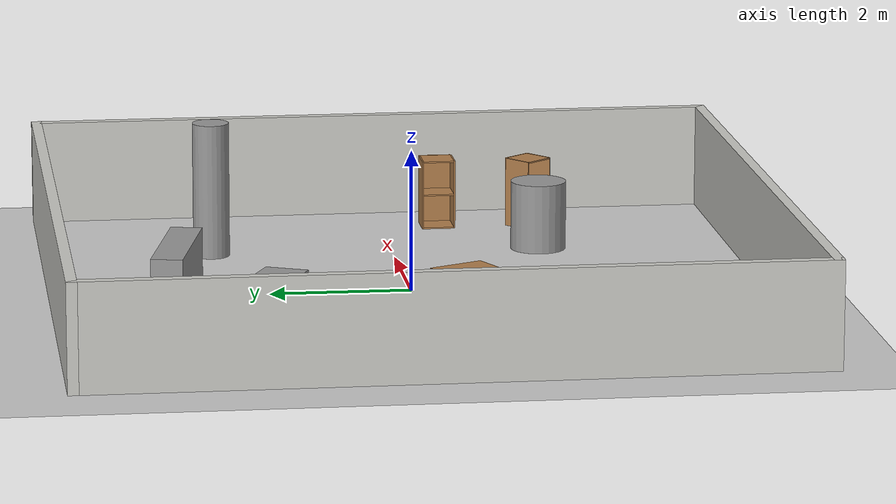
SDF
<sdf version="1.7">
 <world name="default">
  <model name="ground_plane">
   <static>1</static>
   <link name="link">
    <collision name="collision">
     <geometry><plane><normal>0 0 1</normal><size>100 100</size></plane></geometry>
     <surface><friction><ode><mu>100</mu><mu2>50</mu2></ode></friction></surface>
    </collision>
    <visual name="visual">
     <cast_shadows>0</cast_shadows>
     <geometry><plane><normal>0 0 1</normal><size>100 100</size></plane></geometry>
     <material>
      <script><uri>file://media/materials/scripts/gazebo.material</uri><name>Gazebo/Grey</name></script>
     </material>
    </visual>
   </link>
  </model>
  <gravity>0 0 -9.8</gravity>
  <magnetic_field>6e-06 2.3e-05 -4.2e-05</magnetic_field>
  <atmosphere type="adiabatic"/>
  <physics type="ode">
   <max_step_size>0.001</max_step_size>
   <real_time_factor>1</real_time_factor>
   <real_time_update_rate>1000</real_time_update_rate>
  </physics>
  <scene><ambient>0.4 0.4 0.4 1</ambient><background>0.7 0.7 0.7 1</background><shadows>1</shadows></scene>
  <audio><device>default</device></audio>
  <spherical_coordinates>
   <surface_model>EARTH_WGS84</surface_model>
   <latitude_deg>0</latitude_deg>
   <longitude_deg>0</longitude_deg>
   <elevation>0</elevation>
   <heading_deg>0</heading_deg>
  </spherical_coordinates>
  <model name="my_first_world">
   <pose>-0.01092 0.003198 0 0 -0 0</pose>
   <link name="Wall_38">
    <collision name="Wall_38_Collision">
     <geometry><box><size>10.15 0.15 1.5</size></box></geometry>
     <pose>0 0 0.75 0 -0 0</pose>
    </collision>
    <visual name="Wall_38_Visual">
     <pose>0 0 0.75 0 -0 0</pose>
     <geometry><box><size>10.15 0.15 1.5</size></box></geometry>
     <material>
      <script><uri>file://media/materials/scripts/gazebo.material</uri><name>Gazebo/CeilingTiled</name></script>
      <ambient>1 1 1 1</ambient>
     </material>
     <meta><layer>0</layer></meta>
    </visual>
    <pose>-5 0 0 0 -0 -1.5708</pose>
   </link>
   <link name="Wall_39">
    <collision name="Wall_39_Collision">
     <geometry><box><size>10.15 0.15 1.5</size></box></geometry>
     <pose>0 0 0.75 0 -0 0</pose>
    </collision>
    <visual name="Wall_39_Visual">
     <pose>0 0 0.75 0 -0 0</pose>
     <geometry><box><size>10.15 0.15 1.5</size></box></geometry>
     <material>
      <script><uri>file://media/materials/scripts/gazebo.material</uri><name>Gazebo/CeilingTiled</name></script>
      <ambient>1 1 1 1</ambient>
     </material>
     <meta><layer>0</layer></meta>
    </visual>
    <pose>0 -5 0 0 -0 0</pose>
   </link>
   <link name="Wall_40">
    <collision name="Wall_40_Collision">
     <geometry><box><size>10.15 0.15 1.5</size></box></geometry>
     <pose>0 0 0.75 0 -0 0</pose>
    </collision>
    <visual name="Wall_40_Visual">
     <pose>0 0 0.75 0 -0 0</pose>
     <geometry><box><size>10.15 0.15 1.5</size></box></geometry>
     <material>
      <script><uri>file://media/materials/scripts/gazebo.material</uri><name>Gazebo/CeilingTiled</name></script>
      <ambient>1 1 1 1</ambient>
     </material>
     <meta><layer>0</layer></meta>
    </visual>
    <pose>5 0 0 0 -0 1.5708</pose>
   </link>
   <link name="Wall_41">
    <collision name="Wall_41_Collision">
     <geometry><box><size>10.15 0.15 1.5</size></box></geometry>
     <pose>0 0 0.75 0 -0 0</pose>
    </collision>
    <visual name="Wall_41_Visual">
     <pose>0 0 0.75 0 -0 0</pose>
     <geometry><box><size>10.15 0.15 1.5</size></box></geometry>
     <material>
      <script><uri>file://media/materials/scripts/gazebo.material</uri><name>Gazebo/CeilingTiled</name></script>
      <ambient>1 1 1 1</ambient>
     </material>
     <meta><layer>0</layer></meta>
    </visual>
    <pose>0 5 0 0 -0 3.14159</pose>
   </link>
   <static>1</static>
  </model>
  <model name="unit_box">
   <pose>-2.83945 2.108 0.499997 -6e-06 5e-06 -0.433852</pose>
   <link name="link">
    <inertial>
     <mass>1</mass>
     <inertia>
      <ixx>0.166667</ixx>
      <ixy>0</ixy>
      <ixz>0</ixz>
      <iyy>0.166667</iyy>
      <iyz>0</iyz>
      <izz>0.166667</izz>
     </inertia>
    </inertial>
    <collision name="collision"><geometry><box><size>0.524071 0.602367 1</size></box></geometry></collision>
    <visual name="visual">
     <geometry><box><size>0.524071 0.602367 1</size></box></geometry>
     <material>
      <script><name>Gazebo/Grey</name><uri>file://media/materials/scripts/gazebo.material</uri></script>
     </material>
    </visual>
   </link>
  </model>
  <model name="unit_cylinder">
   <pose>2.35188 -2.14352 0.499997 -1e-06 -1e-06 0</pose>
   <link name="link">
    <inertial>
     <mass>1</mass>
     <inertia><ixx>0.145833</ixx><ixy>0</ixy><ixz>0</ixz><iyy>0.145833</iyy><iyz>0</iyz><izz>0.125</izz></inertia>
    </inertial>
    <collision name="collision">
     <geometry><cylinder><radius>0.401266</radius><length>1</length></cylinder></geometry>
    </collision>
    <visual name="visual">
     <geometry><cylinder><radius>0.401266</radius><length>1</length></cylinder></geometry>
     <material>
      <script><name>Gazebo/Grey</name><uri>file://media/materials/scripts/gazebo.material</uri></script>
     </material>
    </visual>
   </link>
  </model>
  <model name="cabinet">
   <static>1</static>
   <link name="cabinet_bottom_plate">
    <inertial>
     <pose>0 0 -1 0 -0 0</pose>
     <inertia><ixx>2.05</ixx><ixy>0</ixy><ixz>0</ixz><iyy>2.05</iyy><iyz>0</iyz><izz>2.05</izz></inertia>
     <mass>25</mass>
    </inertial>
    <collision name="cabinet_bottom_plate_geom">
     <pose>0 0 0.01 0 -0 0</pose>
     <geometry><box><size>0.45 0.45 0.02</size></box></geometry>
    </collision>
    <visual name="cabinet_bottom_plate_geom_visual">
     <pose>0 0 0.01 0 -0 0</pose>
     <geometry><box><size>0.45 0.45 0.02</size></box></geometry>
     <material>
      <script><uri>file://media/materials/scripts/gazebo.material</uri><name>Gazebo/Wood</name></script>
     </material>
    </visual>
    <collision name="cabinet_bottom_plate_geom_cabinet_back_plate">
     <pose>0.235 0 0.51 0 -0 0</pose>
     <geometry><box><size>0.02 0.45 1.02</size></box></geometry>
    </collision>
    <visual name="cabinet_bottom_plate_geom_cabinet_back_plate_visual">
     <pose>0.235 0 0.51 0 -0 0</pose>
     <geometry><box><size>0.02 0.45 1.02</size></box></geometry>
     <material>
      <script><uri>file://media/materials/scripts/gazebo.material</uri><name>Gazebo/Wood</name></script>
     </material>
    </visual>
    <collision name="cabinet_bottom_plate_geom_cabinet_left_plate">
     <pose>0 0.235 0.51 0 -0 0</pose>
     <geometry><box><size>0.45 0.02 1.02</size></box></geometry>
    </collision>
    <visual name="cabinet_bottom_plate_geom_cabinet_left_plate_visual">
     <pose>0 0.235 0.51 0 -0 0</pose>
     <geometry><box><size>0.45 0.02 1.02</size></box></geometry>
     <material>
      <script><uri>file://media/materials/scripts/gazebo.material</uri><name>Gazebo/Wood</name></script>
     </material>
    </visual>
    <collision name="cabinet_bottom_plate_geom_cabinet_middle_plate">
     <pose>0 0 0.51 0 -0 0</pose>
     <geometry><box><size>0.45 0.45 0.02</size></box></geometry>
    </collision>
    <visual name="cabinet_bottom_plate_geom_cabinet_middle_plate_visual">
     <pose>0 0 0.51 0 -0 0</pose>
     <geometry><box><size>0.45 0.45 0.02</size></box></geometry>
     <material>
      <script><uri>file://media/materials/scripts/gazebo.material</uri><name>Gazebo/Wood</name></script>
     </material>
    </visual>
    <collision name="cabinet_bottom_plate_geom_cabinet_right_plate">
     <pose>0 -0.235 0.51 0 -0 0</pose>
     <geometry><box><size>0.45 0.02 1.02</size></box></geometry>
    </collision>
    <visual name="cabinet_bottom_plate_geom_cabinet_right_plate_visual">
     <pose>0 -0.235 0.51 0 -0 0</pose>
     <geometry><box><size>0.45 0.02 1.02</size></box></geometry>
     <material>
      <script><uri>file://media/materials/scripts/gazebo.material</uri><name>Gazebo/Wood</name></script>
     </material>
    </visual>
    <collision name="cabinet_bottom_plate_geom_cabinet_top_plate">
     <pose>0 0 1.01 0 -0 0</pose>
     <geometry><box><size>0.45 0.45 0.02</size></box></geometry>
    </collision>
    <visual name="cabinet_bottom_plate_geom_cabinet_top_plate_visual">
     <pose>0 0 1.01 0 -0 0</pose>
     <geometry><box><size>0.45 0.45 0.02</size></box></geometry>
     <material>
      <script><uri>file://media/materials/scripts/gazebo.material</uri><name>Gazebo/Wood</name></script>
     </material>
    </visual>
   </link>
   <pose>3.96562 -0.867046 0 0 -0 0</pose>
  </model>
  <model name="cabinet_0">
   <static>1</static>
   <link name="cabinet_bottom_plate">
    <inertial>
     <pose>0 0 -1 0 -0 0</pose>
     <inertia><ixx>2.05</ixx><ixy>0</ixy><ixz>0</ixz><iyy>2.05</iyy><iyz>0</iyz><izz>2.05</izz></inertia>
     <mass>25</mass>
    </inertial>
    <collision name="cabinet_bottom_plate_geom">
     <pose>0 0 0.01 0 -0 0</pose>
     <geometry><box><size>0.45 0.45 0.02</size></box></geometry>
    </collision>
    <visual name="cabinet_bottom_plate_geom_visual">
     <pose>0 0 0.01 0 -0 0</pose>
     <geometry><box><size>0.45 0.45 0.02</size></box></geometry>
     <material>
      <script><uri>file://media/materials/scripts/gazebo.material</uri><name>Gazebo/Wood</name></script>
     </material>
    </visual>
    <collision name="cabinet_bottom_plate_geom_cabinet_back_plate">
     <pose>0.235 0 0.51 0 -0 0</pose>
     <geometry><box><size>0.02 0.45 1.02</size></box></geometry>
    </collision>
    <visual name="cabinet_bottom_plate_geom_cabinet_back_plate_visual">
     <pose>0.235 0 0.51 0 -0 0</pose>
     <geometry><box><size>0.02 0.45 1.02</size></box></geometry>
     <material>
      <script><uri>file://media/materials/scripts/gazebo.material</uri><name>Gazebo/Wood</name></script>
     </material>
    </visual>
    <collision name="cabinet_bottom_plate_geom_cabinet_left_plate">
     <pose>0 0.235 0.51 0 -0 0</pose>
     <geometry><box><size>0.45 0.02 1.02</size></box></geometry>
    </collision>
    <visual name="cabinet_bottom_plate_geom_cabinet_left_plate_visual">
     <pose>0 0.235 0.51 0 -0 0</pose>
     <geometry><box><size>0.45 0.02 1.02</size></box></geometry>
     <material>
      <script><uri>file://media/materials/scripts/gazebo.material</uri><name>Gazebo/Wood</name></script>
     </material>
    </visual>
    <collision name="cabinet_bottom_plate_geom_cabinet_middle_plate">
     <pose>0 0 0.51 0 -0 0</pose>
     <geometry><box><size>0.45 0.45 0.02</size></box></geometry>
    </collision>
    <visual name="cabinet_bottom_plate_geom_cabinet_middle_plate_visual">
     <pose>0 0 0.51 0 -0 0</pose>
     <geometry><box><size>0.45 0.45 0.02</size></box></geometry>
     <material>
      <script><uri>file://media/materials/scripts/gazebo.material</uri><name>Gazebo/Wood</name></script>
     </material>
    </visual>
    <collision name="cabinet_bottom_plate_geom_cabinet_right_plate">
     <pose>0 -0.235 0.51 0 -0 0</pose>
     <geometry><box><size>0.45 0.02 1.02</size></box></geometry>
    </collision>
    <visual name="cabinet_bottom_plate_geom_cabinet_right_plate_visual">
     <pose>0 -0.235 0.51 0 -0 0</pose>
     <geometry><box><size>0.45 0.02 1.02</size></box></geometry>
     <material>
      <script><uri>file://media/materials/scripts/gazebo.material</uri><name>Gazebo/Wood</name></script>
     </material>
    </visual>
    <collision name="cabinet_bottom_plate_geom_cabinet_top_plate">
     <pose>0 0 1.01 0 -0 0</pose>
     <geometry><box><size>0.45 0.45 0.02</size></box></geometry>
    </collision>
    <visual name="cabinet_bottom_plate_geom_cabinet_top_plate_visual">
     <pose>0 0 1.01 0 -0 0</pose>
     <geometry><box><size>0.45 0.45 0.02</size></box></geometry>
     <material>
      <script><uri>file://media/materials/scripts/gazebo.material</uri><name>Gazebo/Wood</name></script>
     </material>
    </visual>
   </link>
   <pose>3.83431 -2.21176 0 0 -0 0.682802</pose>
  </model>
  <model name="table">
   <static>1</static>
   <link name="link">
    <collision name="surface">
     <pose>0 0 1 0 -0 0</pose>
     <geometry><box><size>1.5 0.8 0.03</size></box></geometry>
     <surface><friction><ode><mu>0.6</mu><mu2>0.6</mu2></ode></friction></surface>
    </collision>
    <visual name="visual1">
     <pose>0 0 1 0 -0 0</pose>
     <geometry><box><size>1.5 0.8 0.03</size></box></geometry>
     <material>
      <script><uri>file://media/materials/scripts/gazebo.material</uri><name>Gazebo/Wood</name></script>
     </material>
    </visual>
    <collision name="front_left_leg">
     <pose>0.68 0.38 0.5 0 -0 0</pose>
     <geometry><cylinder><radius>0.02</radius><length>1</length></cylinder></geometry>
    </collision>
    <visual name="front_left_leg">
     <pose>0.68 0.38 0.5 0 -0 0</pose>
     <geometry><cylinder><radius>0.02</radius><length>1</length></cylinder></geometry>
     <material>
      <script><uri>file://media/materials/scripts/gazebo.material</uri><name>Gazebo/Grey</name></script>
     </material>
    </visual>
    <collision name="front_right_leg">
     <pose>0.68 -0.38 0.5 0 -0 0</pose>
     <geometry><cylinder><radius>0.02</radius><length>1</length></cylinder></geometry>
    </collision>
    <visual name="front_right_leg">
     <pose>0.68 -0.38 0.5 0 -0 0</pose>
     <geometry><cylinder><radius>0.02</radius><length>1</length></cylinder></geometry>
     <material>
      <script><uri>file://media/materials/scripts/gazebo.material</uri><name>Gazebo/Grey</name></script>
     </material>
    </visual>
    <collision name="back_right_leg">
     <pose>-0.68 -0.38 0.5 0 -0 0</pose>
     <geometry><cylinder><radius>0.02</radius><length>1</length></cylinder></geometry>
    </collision>
    <visual name="back_right_leg">
     <pose>-0.68 -0.38 0.5 0 -0 0</pose>
     <geometry><cylinder><radius>0.02</radius><length>1</length></cylinder></geometry>
     <material>
      <script><uri>file://media/materials/scripts/gazebo.material</uri><name>Gazebo/Grey</name></script>
     </material>
    </visual>
    <collision name="back_left_leg">
     <pose>-0.68 0.38 0.5 0 -0 0</pose>
     <geometry><cylinder><radius>0.02</radius><length>1</length></cylinder></geometry>
    </collision>
    <visual name="back_left_leg">
     <pose>-0.68 0.38 0.5 0 -0 0</pose>
     <geometry><cylinder><radius>0.02</radius><length>1</length></cylinder></geometry>
     <material>
      <script><uri>file://media/materials/scripts/gazebo.material</uri><name>Gazebo/Grey</name></script>
     </material>
    </visual>
   </link>
   <pose>-3.38561 -0.579962 0 0 -0 0.443692</pose>
  </model>
  <model name="unit_cylinder_0">
   <pose>2.46602 2.61223 0.97704 -1e-06 -0 -0.000321</pose>
   <link name="link">
    <inertial>
     <mass>1</mass>
     <inertia><ixx>0.145833</ixx><ixy>0</ixy><ixz>0</ixz><iyy>0.145833</iyy><iyz>0</iyz><izz>0.125</izz></inertia>
    </inertial>
    <collision name="collision">
     <geometry><cylinder><radius>0.262228</radius><length>1.95408</length></cylinder></geometry>
    </collision>
    <visual name="visual">
     <geometry><cylinder><radius>0.262228</radius><length>1.95408</length></cylinder></geometry>
     <material>
      <script><name>Gazebo/Grey</name><uri>file://media/materials/scripts/gazebo.material</uri></script>
     </material>
    </visual>
   </link>
  </model>
  <model name="unit_box_0">
   <pose>-0.296504 3.31238 0.42118 -0 -0 -0.213663</pose>
   <link name="link">
    <inertial>
     <mass>1</mass>
     <inertia>
      <ixx>0.166667</ixx>
      <ixy>0</ixy>
      <ixz>0</ixz>
      <iyy>0.166667</iyy>
      <iyz>0</iyz>
      <izz>0.166667</izz>
     </inertia>
    </inertial>
    <collision name="collision"><geometry><box><size>1.96284 0.446894 0.842359</size></box></geometry></collision>
    <visual name="visual">
     <geometry><box><size>1.96284 0.446894 0.842359</size></box></geometry>
     <material>
      <script><name>Gazebo/Grey</name><uri>file://media/materials/scripts/gazebo.material</uri></script>
     </material>
    </visual>
   </link>
  </model>
  <light name="sun" type="directional">
   <pose>-0.01221 -0.01212 10 0 -0 0</pose>
   <diffuse>0.8 0.8 0.8 1</diffuse>
   <specular>0.2 0.2 0.2 1</specular>
   <attenuation>
    <range>1000</range>
    <constant>0.9</constant>
    <linear>0.01</linear>
    <quadratic>0.001</quadratic>
   </attenuation>
   <direction>-0.5 0.1 -0.9</direction>
   <spot><inner_angle>0</inner_angle><outer_angle>0</outer_angle><falloff>0</falloff></spot>
  </light>
  <light name="user_spot_light_0" type="spot">
   <pose>4 4 2 0 -0 0</pose>
   <diffuse>0.5 0.5 0.5 1</diffuse>
   <specular>0.1 0.1 0.1 1</specular>
   <direction>0 0 -1</direction>
   <attenuation>
    <range>20</range>
    <constant>0.5</constant>
    <linear>0.01</linear>
    <quadratic>0.001</quadratic>
   </attenuation>
   <cast_shadows>0</cast_shadows>
   <spot><inner_angle>0.6</inner_angle><outer_angle>1</outer_angle><falloff>1</falloff></spot>
  </light>
 </world>
</sdf>
